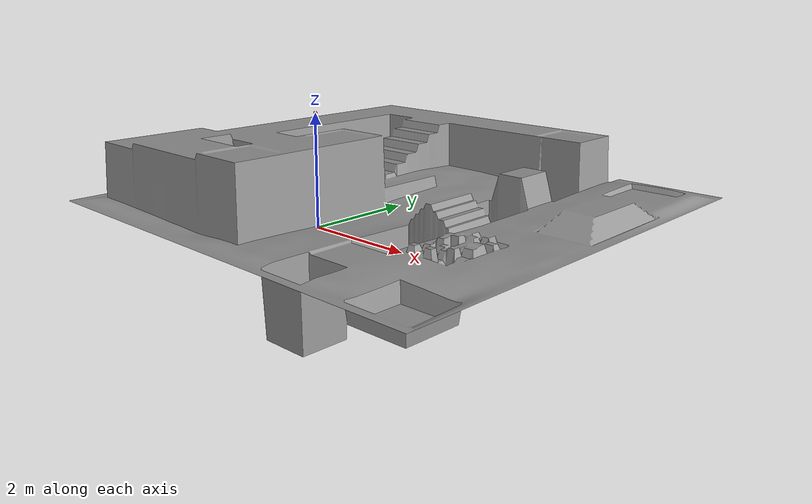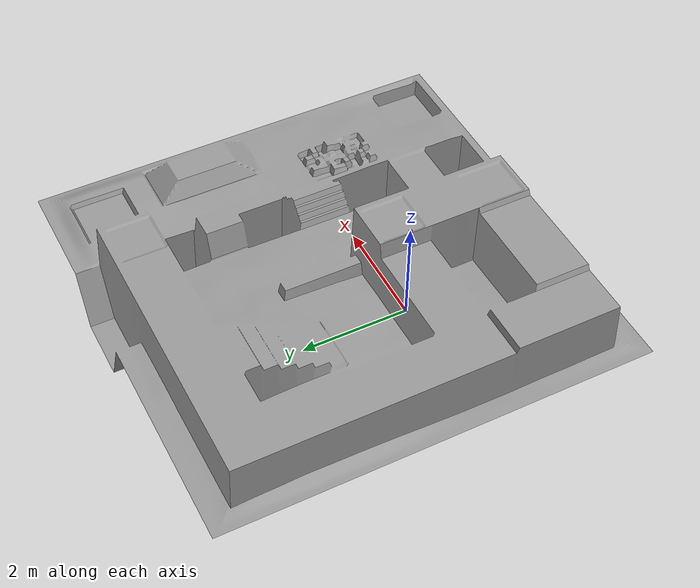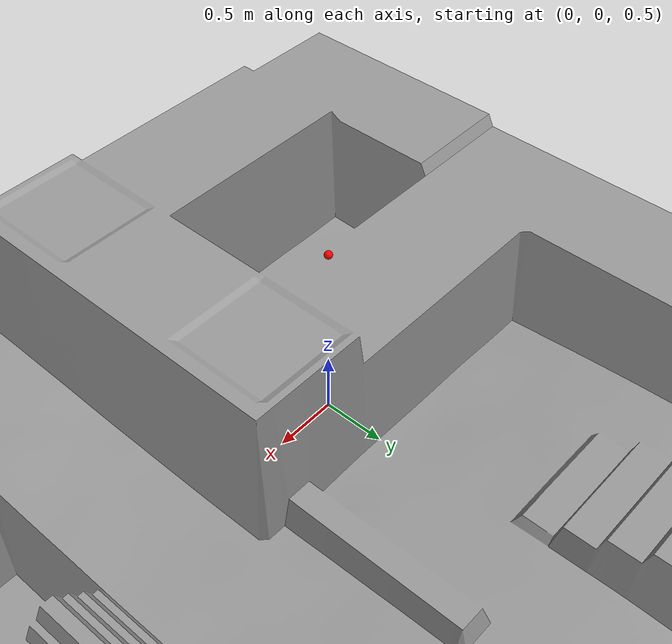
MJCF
<mujoco model="go2 scene">

  <statistic center="0 0 0.1" extent="0.8"/>

  <visual>
    <headlight diffuse="0.6 0.6 0.6" ambient="0.3 0.3 0.3" specular="0 0 0"/>
    <rgba haze="0.15 0.25 0.35 1"/>
    <global azimuth="120" elevation="-20"/>
  </visual>

  <asset>
    <texture type="skybox" builtin="gradient" rgb1="0.3 0.5 0.7" rgb2="0 0 0" width="512" height="3072"/>
    <texture type="2d" name="groundplane" builtin="checker" mark="edge" rgb1="0.2 0.3 0.4" rgb2="0.1 0.2 0.3"
      markrgb="0.8 0.8 0.8" width="300" height="300"/>
    <material name="groundplane" texture="groundplane" texuniform="true" texrepeat="5 5" reflectance="0.2"/>
    <mesh name="terrain" file="../../terrain_tool/terrain.obj" scale="1 1 1"/>
    <material name="mat_terrain" rgba="0.6 0.6 0.6 1"/>
  </asset>

  <worldbody>
    <light pos="0 0 1.5" dir="0 0 -1" directional="true"/>
    <geom type="mesh" mesh="terrain" material="mat_terrain"
          contype="1" conaffinity="2"
          rgba="0.6 0.6 0.6 1" pos="-3 -3 -0.5"/>
    <body name="drop" pos="0 0 2">
    <freejoint/>
    <geom type="sphere" size="0.03" density="1000" rgba="1 0 0 1"/>
    </body>

  </worldbody>
</mujoco>
